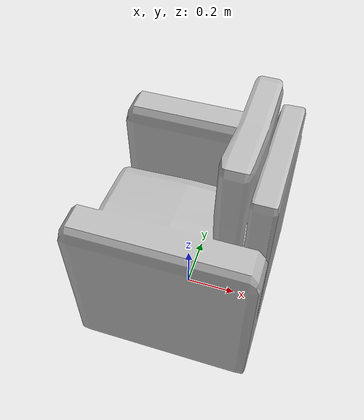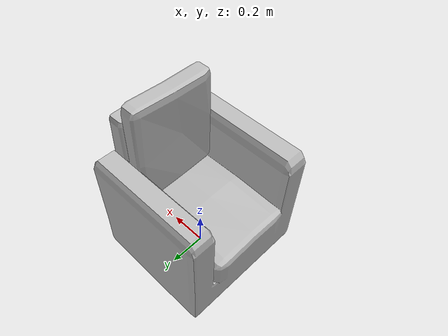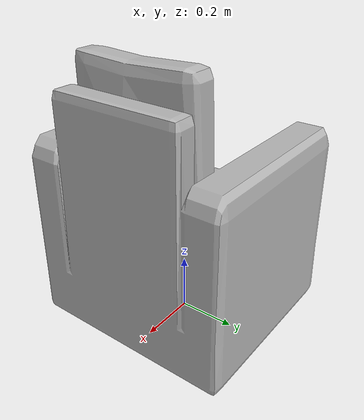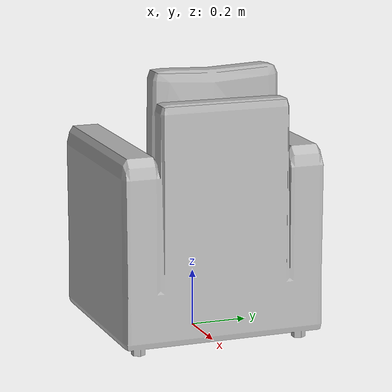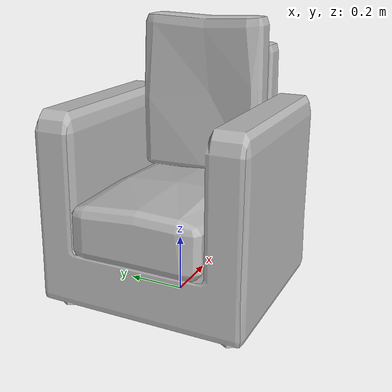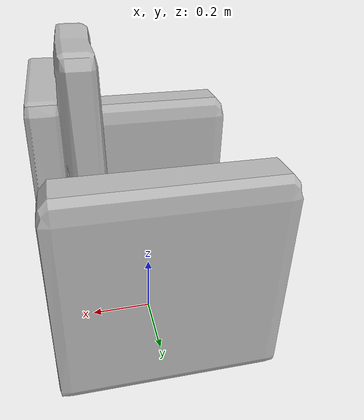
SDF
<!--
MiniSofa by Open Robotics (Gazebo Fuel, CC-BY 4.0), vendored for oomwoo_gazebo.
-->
<?xml version="1.0"?>

<sdf version="1.6">
  <model name='MiniSofa'>
    <link name="body">
      <pose>0 0 0 0 0 -1.57079632679</pose>

      <visual name="visual">
        <geometry>
          <mesh>
            <uri>meshes/minisofa.obj</uri>
            <scale>1.00 1.00 1.5729</scale>
          </mesh>
        </geometry>
      </visual>

      <collision name="collision">
        <geometry>
          <mesh>
            <uri>meshes/minisofa.obj</uri>
            <scale>1.00 1.00 1.5729</scale>
          </mesh>
        </geometry>
      </collision>

    </link>
    <static>1</static>
  </model>
</sdf>
